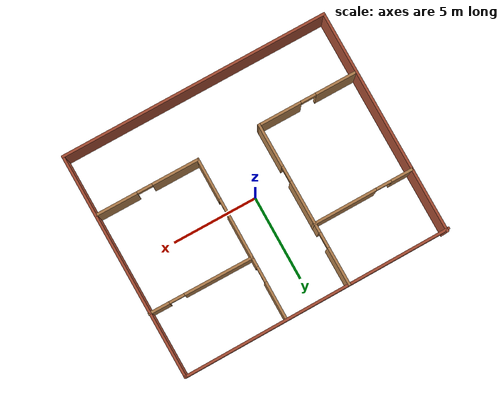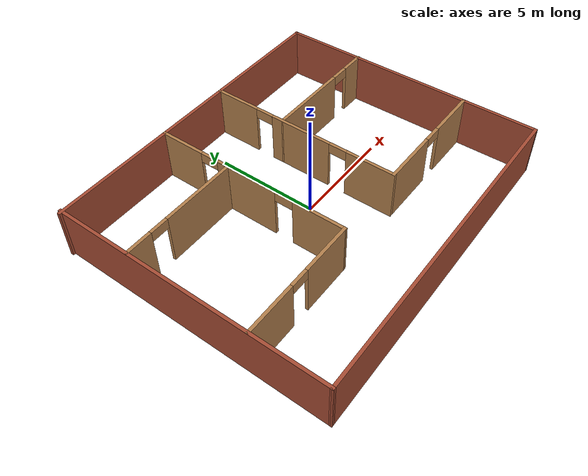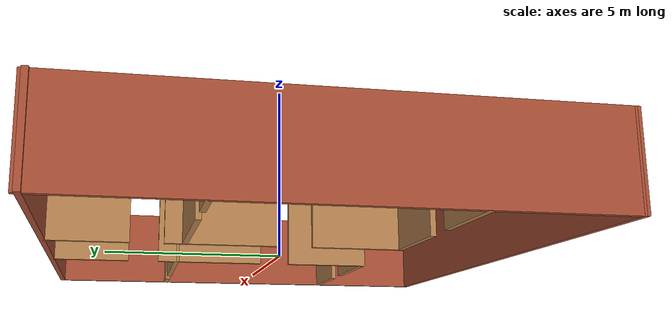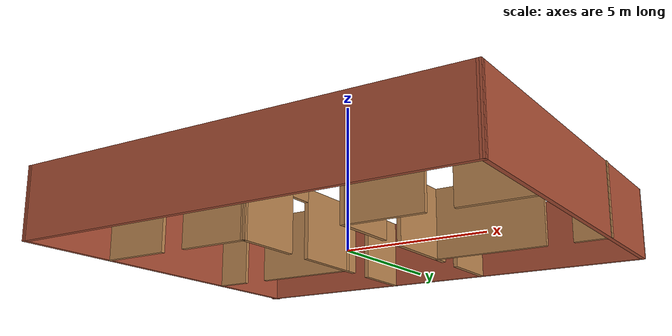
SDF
<?xml version='1.0'?>
<sdf version='1.7'>
  <model name='my_floor'>
    <pose>0.006893 -0.015172 0 0 -0 0</pose>
    <link name='Wall_0'>
      <collision name='Wall_0_Collision'>
        <geometry>
          <box>
            <size>13.3969 0.15 2.5</size>
          </box>
        </geometry>
        <pose>0 0 1.25 0 -0 0</pose>
      </collision>
      <visual name='Wall_0_Visual'>
        <pose>0 0 1.25 0 -0 0</pose>
        <geometry>
          <box>
            <size>13.3969 0.15 2.5</size>
          </box>
        </geometry>
        <material>
          <script>
            <uri>file://media/materials/scripts/gazebo.material</uri>
            <name>Gazebo/Bricks</name>
          </script>
          <ambient>1 1 1 1</ambient>
        </material>
        <meta>
          <layer>0</layer>
        </meta>
      </visual>
      <pose>-7.83388 -0.013549 0 0 -0 -1.5708</pose>
    </link>
    <link name='Wall_10'>
      <pose>-4.87438 -3.05973 0 0 -0 0.002577</pose>
      <visual name='Wall_10_Visual_0'>
        <pose>-1.74777 0 1.25 0 -0 0</pose>
        <geometry>
          <box>
            <size>2.55547 0.15 2.5</size>
          </box>
        </geometry>
        <material>
          <script>
            <uri>file://media/materials/scripts/gazebo.material</uri>
            <name>Gazebo/Wood</name>
          </script>
          <ambient>1 1 1 1</ambient>
        </material>
        <meta>
          <layer>0</layer>
        </meta>
      </visual>
      <collision name='Wall_10_Collision_0'>
        <geometry>
          <box>
            <size>2.55547 0.15 2.5</size>
          </box>
        </geometry>
        <pose>-1.74777 0 1.25 0 -0 0</pose>
      </collision>
      <visual name='Wall_10_Visual_1'>
        <pose>1.72773 0 1.25 0 -0 0</pose>
        <geometry>
          <box>
            <size>2.59555 0.15 2.5</size>
          </box>
        </geometry>
        <material>
          <script>
            <uri>file://media/materials/scripts/gazebo.material</uri>
            <name>Gazebo/Wood</name>
          </script>
          <ambient>1 1 1 1</ambient>
        </material>
        <meta>
          <layer>0</layer>
        </meta>
      </visual>
      <collision name='Wall_10_Collision_1'>
        <geometry>
          <box>
            <size>2.59555 0.15 2.5</size>
          </box>
        </geometry>
        <pose>1.72773 0 1.25 0 -0 0</pose>
      </collision>
      <visual name='Wall_10_Visual_2'>
        <pose>-0.020041 0 2.25 0 -0 0</pose>
        <geometry>
          <box>
            <size>0.9 0.15 0.5</size>
          </box>
        </geometry>
        <material>
          <script>
            <uri>file://media/materials/scripts/gazebo.material</uri>
            <name>Gazebo/Wood</name>
          </script>
          <ambient>1 1 1 1</ambient>
        </material>
        <meta>
          <layer>0</layer>
        </meta>
      </visual>
      <collision name='Wall_10_Collision_2'>
        <geometry>
          <box>
            <size>0.9 0.15 0.5</size>
          </box>
        </geometry>
        <pose>-0.020041 0 2.25 0 -0 0</pose>
      </collision>
    </link>
    <link name='Wall_12'>
      <pose>-1.9459 1.7558 0 0 -0 1.57537</pose>
      <visual name='Wall_12_Visual_0'>
        <pose>-3.58779 0 1.25 0 -0 0</pose>
        <geometry>
          <box>
            <size>2.59036 0.15 2.5</size>
          </box>
        </geometry>
        <material>
          <script>
            <uri>file://media/materials/scripts/gazebo.material</uri>
            <name>Gazebo/Wood</name>
          </script>
          <ambient>1 1 1 1</ambient>
        </material>
        <meta>
          <layer>0</layer>
        </meta>
      </visual>
      <collision name='Wall_12_Collision_0'>
        <geometry>
          <box>
            <size>2.59036 0.15 2.5</size>
          </box>
        </geometry>
        <pose>-3.58779 0 1.25 0 -0 0</pose>
      </collision>
      <visual name='Wall_12_Visual_1'>
        <pose>0.157015 0 1.25 0 -0 0</pose>
        <geometry>
          <box>
            <size>3.09926 0.15 2.5</size>
          </box>
        </geometry>
        <material>
          <script>
            <uri>file://media/materials/scripts/gazebo.material</uri>
            <name>Gazebo/Wood</name>
          </script>
          <ambient>1 1 1 1</ambient>
        </material>
        <meta>
          <layer>0</layer>
        </meta>
      </visual>
      <collision name='Wall_12_Collision_1'>
        <geometry>
          <box>
            <size>3.09926 0.15 2.5</size>
          </box>
        </geometry>
        <pose>0.157015 0 1.25 0 -0 0</pose>
      </collision>
      <visual name='Wall_12_Visual_2'>
        <pose>3.74481 0 1.25 0 -0 0</pose>
        <geometry>
          <box>
            <size>2.27633 0.15 2.5</size>
          </box>
        </geometry>
        <material>
          <script>
            <uri>file://media/materials/scripts/gazebo.material</uri>
            <name>Gazebo/Wood</name>
          </script>
          <ambient>1 1 1 1</ambient>
        </material>
        <meta>
          <layer>0</layer>
        </meta>
      </visual>
      <collision name='Wall_12_Collision_2'>
        <geometry>
          <box>
            <size>2.27633 0.15 2.5</size>
          </box>
        </geometry>
        <pose>3.74481 0 1.25 0 -0 0</pose>
      </collision>
      <visual name='Wall_12_Visual_3'>
        <pose>-1.84261 0 2.25 0 -0 0</pose>
        <geometry>
          <box>
            <size>0.9 0.15 0.5</size>
          </box>
        </geometry>
        <material>
          <script>
            <uri>file://media/materials/scripts/gazebo.material</uri>
            <name>Gazebo/Wood</name>
          </script>
          <ambient>1 1 1 1</ambient>
        </material>
        <meta>
          <layer>0</layer>
        </meta>
      </visual>
      <collision name='Wall_12_Collision_3'>
        <geometry>
          <box>
            <size>0.9 0.15 0.5</size>
          </box>
        </geometry>
        <pose>-1.84261 0 2.25 0 -0 0</pose>
      </collision>
      <visual name='Wall_12_Visual_4'>
        <pose>2.15664 0 2.25 0 -0 0</pose>
        <geometry>
          <box>
            <size>0.9 0.15 0.5</size>
          </box>
        </geometry>
        <material>
          <script>
            <uri>file://media/materials/scripts/gazebo.material</uri>
            <name>Gazebo/Wood</name>
          </script>
          <ambient>1 1 1 1</ambient>
        </material>
        <meta>
          <layer>0</layer>
        </meta>
      </visual>
      <collision name='Wall_12_Collision_4'>
        <geometry>
          <box>
            <size>0.9 0.15 0.5</size>
          </box>
        </geometry>
        <pose>2.15664 0 2.25 0 -0 0</pose>
      </collision>
    </link>
    <link name='Wall_14'>
      <pose>-4.88063 2.9062 0 0 -0 0.004525</pose>
      <visual name='Wall_14_Visual_0'>
        <pose>-2.34508 0 1.25 0 -0 0</pose>
        <geometry>
          <box>
            <size>1.33854 0.15 2.5</size>
          </box>
        </geometry>
        <material>
          <script>
            <uri>file://media/materials/scripts/gazebo.material</uri>
            <name>Gazebo/Wood</name>
          </script>
          <ambient>1 1 1 1</ambient>
        </material>
        <meta>
          <layer>0</layer>
        </meta>
      </visual>
      <collision name='Wall_14_Collision_0'>
        <geometry>
          <box>
            <size>1.33854 0.15 2.5</size>
          </box>
        </geometry>
        <pose>-2.34508 0 1.25 0 -0 0</pose>
      </collision>
      <visual name='Wall_14_Visual_1'>
        <pose>1.11927 0 1.25 0 -0 0</pose>
        <geometry>
          <box>
            <size>3.79016 0.15 2.5</size>
          </box>
        </geometry>
        <material>
          <script>
            <uri>file://media/materials/scripts/gazebo.material</uri>
            <name>Gazebo/Wood</name>
          </script>
          <ambient>1 1 1 1</ambient>
        </material>
        <meta>
          <layer>0</layer>
        </meta>
      </visual>
      <collision name='Wall_14_Collision_1'>
        <geometry>
          <box>
            <size>3.79016 0.15 2.5</size>
          </box>
        </geometry>
        <pose>1.11927 0 1.25 0 -0 0</pose>
      </collision>
      <visual name='Wall_14_Visual_2'>
        <pose>-1.22581 0 2.25 0 -0 0</pose>
        <geometry>
          <box>
            <size>0.9 0.15 0.5</size>
          </box>
        </geometry>
        <material>
          <script>
            <uri>file://media/materials/scripts/gazebo.material</uri>
            <name>Gazebo/Wood</name>
          </script>
          <ambient>1 1 1 1</ambient>
        </material>
        <meta>
          <layer>0</layer>
        </meta>
      </visual>
      <collision name='Wall_14_Collision_2'>
        <geometry>
          <box>
            <size>0.9 0.15 0.5</size>
          </box>
        </geometry>
        <pose>-1.22581 0 2.25 0 -0 0</pose>
      </collision>
    </link>
    <link name='Wall_16'>
      <pose>1.78272 1.79033 0 0 -0 -1.5708</pose>
      <visual name='Wall_16_Visual_0'>
        <pose>-3.71499 0 1.25 0 -0 0</pose>
        <geometry>
          <box>
            <size>2.32002 0.15 2.5</size>
          </box>
        </geometry>
        <material>
          <script>
            <uri>file://media/materials/scripts/gazebo.material</uri>
            <name>Gazebo/Wood</name>
          </script>
          <ambient>1 1 1 1</ambient>
        </material>
        <meta>
          <layer>0</layer>
        </meta>
      </visual>
      <collision name='Wall_16_Collision_0'>
        <geometry>
          <box>
            <size>2.32002 0.15 2.5</size>
          </box>
        </geometry>
        <pose>-3.71499 0 1.25 0 -0 0</pose>
      </collision>
      <visual name='Wall_16_Visual_1'>
        <pose>-0.076134 0 1.25 0 -0 0</pose>
        <geometry>
          <box>
            <size>3.15769 0.15 2.5</size>
          </box>
        </geometry>
        <material>
          <script>
            <uri>file://media/materials/scripts/gazebo.material</uri>
            <name>Gazebo/Wood</name>
          </script>
          <ambient>1 1 1 1</ambient>
        </material>
        <meta>
          <layer>0</layer>
        </meta>
      </visual>
      <collision name='Wall_16_Collision_1'>
        <geometry>
          <box>
            <size>3.15769 0.15 2.5</size>
          </box>
        </geometry>
        <pose>-0.076134 0 1.25 0 -0 0</pose>
      </collision>
      <visual name='Wall_16_Visual_2'>
        <pose>3.63886 0 1.25 0 -0 0</pose>
        <geometry>
          <box>
            <size>2.47229 0.15 2.5</size>
          </box>
        </geometry>
        <material>
          <script>
            <uri>file://media/materials/scripts/gazebo.material</uri>
            <name>Gazebo/Wood</name>
          </script>
          <ambient>1 1 1 1</ambient>
        </material>
        <meta>
          <layer>0</layer>
        </meta>
      </visual>
      <collision name='Wall_16_Collision_2'>
        <geometry>
          <box>
            <size>2.47229 0.15 2.5</size>
          </box>
        </geometry>
        <pose>3.63886 0 1.25 0 -0 0</pose>
      </collision>
      <visual name='Wall_16_Visual_3'>
        <pose>-2.10498 0 2.25 0 -0 0</pose>
        <geometry>
          <box>
            <size>0.9 0.15 0.5</size>
          </box>
        </geometry>
        <material>
          <script>
            <uri>file://media/materials/scripts/gazebo.material</uri>
            <name>Gazebo/Wood</name>
          </script>
          <ambient>1 1 1 1</ambient>
        </material>
        <meta>
          <layer>0</layer>
        </meta>
      </visual>
      <collision name='Wall_16_Collision_3'>
        <geometry>
          <box>
            <size>0.9 0.15 0.5</size>
          </box>
        </geometry>
        <pose>-2.10498 0 2.25 0 -0 0</pose>
      </collision>
      <visual name='Wall_16_Visual_4'>
        <pose>1.95271 0 2.25 0 -0 0</pose>
        <geometry>
          <box>
            <size>0.9 0.15 0.5</size>
          </box>
        </geometry>
        <material>
          <script>
            <uri>file://media/materials/scripts/gazebo.material</uri>
            <name>Gazebo/Wood</name>
          </script>
          <ambient>1 1 1 1</ambient>
        </material>
        <meta>
          <layer>0</layer>
        </meta>
      </visual>
      <collision name='Wall_16_Collision_4'>
        <geometry>
          <box>
            <size>0.9 0.15 0.5</size>
          </box>
        </geometry>
        <pose>1.95271 0 2.25 0 -0 0</pose>
      </collision>
    </link>
    <link name='Wall_17'>
      <pose>4.83272 -3.00967 0 0 -0 0</pose>
      <visual name='Wall_17_Visual_0'>
        <pose>-1.71276 0 1.25 0 -0 0</pose>
        <geometry>
          <box>
            <size>2.82448 0.15 2.5</size>
          </box>
        </geometry>
        <material>
          <script>
            <uri>file://media/materials/scripts/gazebo.material</uri>
            <name>Gazebo/Wood</name>
          </script>
          <ambient>1 1 1 1</ambient>
        </material>
        <meta>
          <layer>0</layer>
        </meta>
      </visual>
      <collision name='Wall_17_Collision_0'>
        <geometry>
          <box>
            <size>2.82448 0.15 2.5</size>
          </box>
        </geometry>
        <pose>-1.71276 0 1.25 0 -0 0</pose>
      </collision>
      <visual name='Wall_17_Visual_1'>
        <pose>1.86224 0 1.25 0 -0 0</pose>
        <geometry>
          <box>
            <size>2.52552 0.15 2.5</size>
          </box>
        </geometry>
        <material>
          <script>
            <uri>file://media/materials/scripts/gazebo.material</uri>
            <name>Gazebo/Wood</name>
          </script>
          <ambient>1 1 1 1</ambient>
        </material>
        <meta>
          <layer>0</layer>
        </meta>
      </visual>
      <collision name='Wall_17_Collision_1'>
        <geometry>
          <box>
            <size>2.52552 0.15 2.5</size>
          </box>
        </geometry>
        <pose>1.86224 0 1.25 0 -0 0</pose>
      </collision>
      <visual name='Wall_17_Visual_2'>
        <pose>0.149482 0 2.25 0 -0 0</pose>
        <geometry>
          <box>
            <size>0.9 0.15 0.5</size>
          </box>
        </geometry>
        <material>
          <script>
            <uri>file://media/materials/scripts/gazebo.material</uri>
            <name>Gazebo/Wood</name>
          </script>
          <ambient>1 1 1 1</ambient>
        </material>
        <meta>
          <layer>0</layer>
        </meta>
      </visual>
      <collision name='Wall_17_Collision_2'>
        <geometry>
          <box>
            <size>0.9 0.15 0.5</size>
          </box>
        </geometry>
        <pose>0.149482 0 2.25 0 -0 0</pose>
      </collision>
    </link>
    <link name='Wall_21'>
      <pose>4.82844 2.8796 0 0 -0 -0.004367</pose>
      <visual name='Wall_21_Visual_0'>
        <pose>-1.07 0 1.25 0 -0 0</pose>
        <geometry>
          <box>
            <size>4.1015 0.15 2.5</size>
          </box>
        </geometry>
        <material>
          <script>
            <uri>file://media/materials/scripts/gazebo.material</uri>
            <name>Gazebo/Wood</name>
          </script>
          <ambient>1 1 1 1</ambient>
        </material>
        <meta>
          <layer>0</layer>
        </meta>
      </visual>
      <collision name='Wall_21_Collision_0'>
        <geometry>
          <box>
            <size>4.1015 0.15 2.5</size>
          </box>
        </geometry>
        <pose>-1.07 0 1.25 0 -0 0</pose>
      </collision>
      <visual name='Wall_21_Visual_1'>
        <pose>2.50075 0 1.25 0 -0 0</pose>
        <geometry>
          <box>
            <size>1.24001 0.15 2.5</size>
          </box>
        </geometry>
        <material>
          <script>
            <uri>file://media/materials/scripts/gazebo.material</uri>
            <name>Gazebo/Wood</name>
          </script>
          <ambient>1 1 1 1</ambient>
        </material>
        <meta>
          <layer>0</layer>
        </meta>
      </visual>
      <collision name='Wall_21_Collision_1'>
        <geometry>
          <box>
            <size>1.24001 0.15 2.5</size>
          </box>
        </geometry>
        <pose>2.50075 0 1.25 0 -0 0</pose>
      </collision>
      <visual name='Wall_21_Visual_2'>
        <pose>1.43074 0 2.25 0 -0 0</pose>
        <geometry>
          <box>
            <size>0.9 0.15 0.5</size>
          </box>
        </geometry>
        <material>
          <script>
            <uri>file://media/materials/scripts/gazebo.material</uri>
            <name>Gazebo/Wood</name>
          </script>
          <ambient>1 1 1 1</ambient>
        </material>
        <meta>
          <layer>0</layer>
        </meta>
      </visual>
      <collision name='Wall_21_Collision_2'>
        <geometry>
          <box>
            <size>0.9 0.15 0.5</size>
          </box>
        </geometry>
        <pose>1.43074 0 2.25 0 -0 0</pose>
      </collision>
    </link>
    <link name='Wall_3'>
      <collision name='Wall_3_Collision'>
        <geometry>
          <box>
            <size>15.924 0.15 2.5</size>
          </box>
        </geometry>
        <pose>0 0 1.25 0 -0 0</pose>
      </collision>
      <visual name='Wall_3_Visual'>
        <pose>0 0 1.25 0 -0 0</pose>
        <geometry>
          <box>
            <size>15.924 0.15 2.5</size>
          </box>
        </geometry>
        <material>
          <script>
            <uri>file://media/materials/scripts/gazebo.material</uri>
            <name>Gazebo/Bricks</name>
          </script>
          <ambient>1 1 1 1</ambient>
        </material>
        <meta>
          <layer>0</layer>
        </meta>
      </visual>
      <pose>0.05308 -6.6104 0 0 -0 0.003373</pose>
    </link>
    <link name='Wall_4'>
      <collision name='Wall_4_Collision'>
        <geometry>
          <box>
            <size>13.371 0.15 2.5</size>
          </box>
        </geometry>
        <pose>0 0 1.25 0 -0 0</pose>
      </collision>
      <visual name='Wall_4_Visual'>
        <pose>0 0 1.25 0 -0 0</pose>
        <geometry>
          <box>
            <size>13.371 0.15 2.5</size>
          </box>
        </geometry>
        <material>
          <script>
            <uri>file://media/materials/scripts/gazebo.material</uri>
            <name>Gazebo/Bricks</name>
          </script>
          <ambient>1 1 1 1</ambient>
        </material>
        <meta>
          <layer>0</layer>
        </meta>
      </visual>
      <pose>7.87354 0.026351 0 0 -0 1.58086</pose>
    </link>
    <link name='Wall_5'>
      <collision name='Wall_5_Collision'>
        <geometry>
          <box>
            <size>15.8977 0.15 2.5</size>
          </box>
        </geometry>
        <pose>0 0 1.25 0 -0 0</pose>
      </collision>
      <visual name='Wall_5_Visual'>
        <pose>0 0 1.25 0 -0 0</pose>
        <geometry>
          <box>
            <size>15.8977 0.15 2.5</size>
          </box>
        </geometry>
        <material>
          <script>
            <uri>file://media/materials/scripts/gazebo.material</uri>
            <name>Gazebo/Bricks</name>
          </script>
          <ambient>1 1 1 1</ambient>
        </material>
        <meta>
          <layer>0</layer>
        </meta>
      </visual>
      <pose>-0.066621 6.5833 0 0 -0 -3.13484</pose>
    </link>
    <static>1</static>
  </model>
</sdf>
